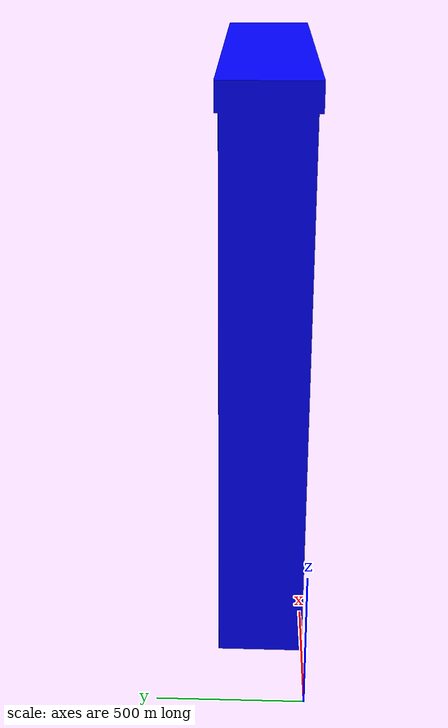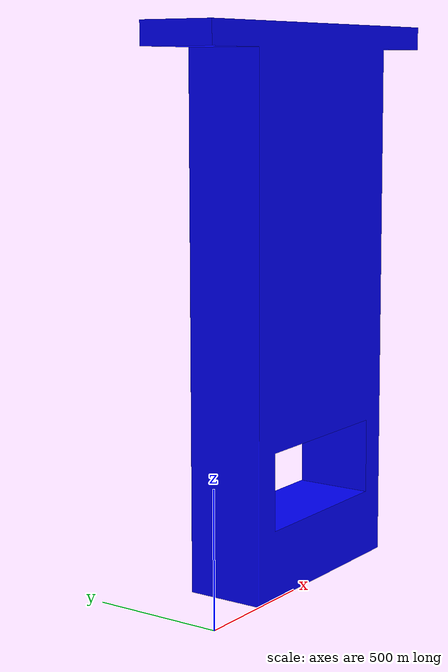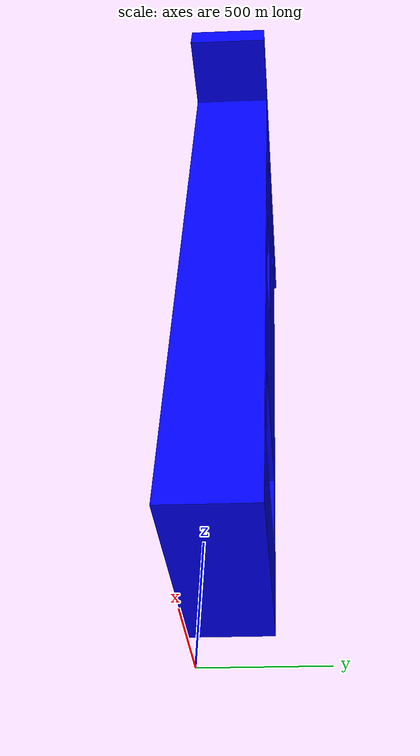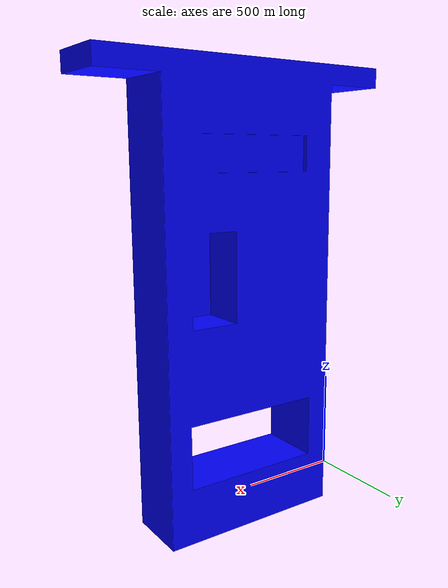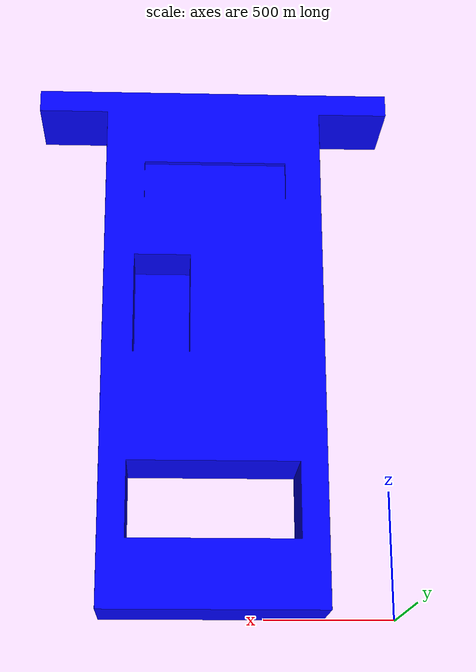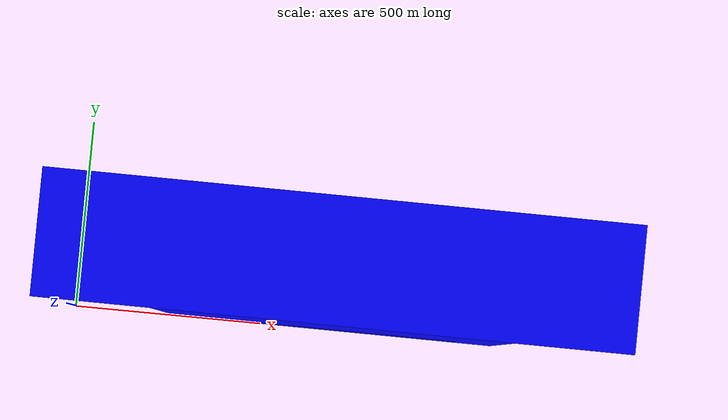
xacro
<?xml version="1.0"?>
<robot xmlns:xacro="http://www.ros.org/wiki/xacro" name="dispenser">
      <link name="world" />

    <joint name="virtual_joint" type="fixed">
     <parent link="world"/>
     <child link="dispenser"/>
   </joint>

   <link name="dispenser">
    <visual>
        <geometry>
            <mesh filename="package://panda_arm/description/meshes/collision/fuel_dispenser.stl"/>
         </geometry>
        <material name="Blue">
            <color rgba="0 0 1 1.0"/>
        </material>
    </visual>
    <collision>
        <geometry>
            <mesh filename="package://panda_arm/description/meshes/collision/fuel_dispenser.stl"/>
         </geometry>
    </collision>
    <inertial>
        <mass value="7.0"/>
        <origin xyz="0.0 0.0 0.0" rpy="0.0 0.0 0.0"/>
        <inertia ixx="0.0" ixy="0.0" ixz="0.0" iyy="0.0" iyz="0.0" izz="0.0"/>
    </inertial>
   </link>
</robot>
